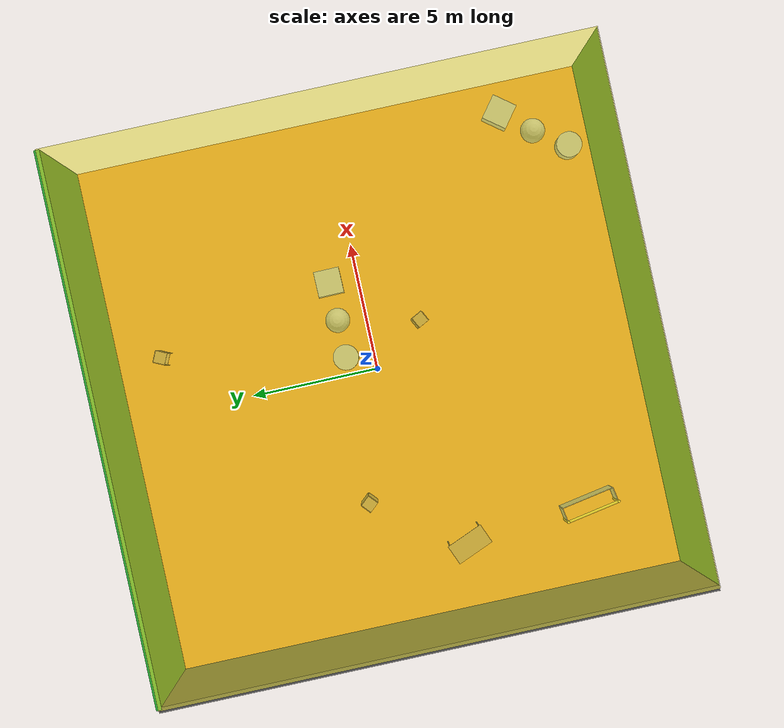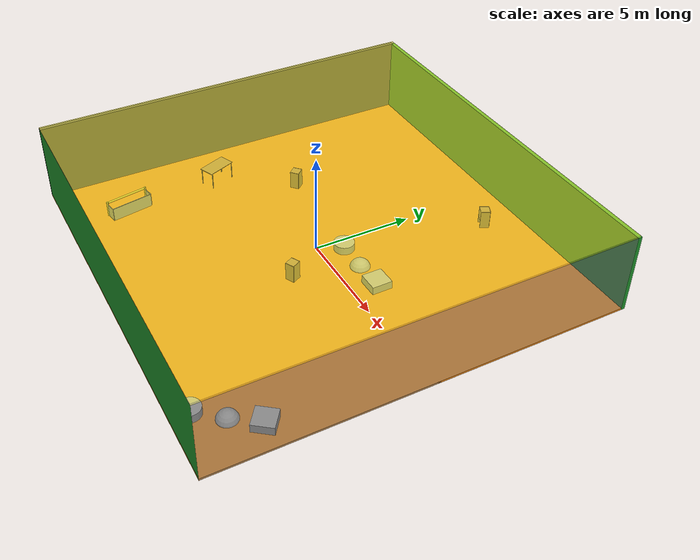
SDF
<sdf version="1.4">
 <world name="default">
  <physics type="ode">
   <max_step_size>0.001</max_step_size>
   <real_time_factor>1</real_time_factor>
   <real_time_update_rate>1000</real_time_update_rate>
   <gravity>0 0 -9.8</gravity>
  </physics>
  <scene><ambient>0.4 0.4 0.4 1</ambient><background>0.7 0.7 0.7 1</background><shadows>1</shadows></scene>
  <model name="Surrounding">
   <static>1</static>
   <link name="Ceiling">
    <collision name="Ceiling_Collision"><geometry><box><size>20 20 0.1</size></box></geometry></collision>
    <visual name="Ceiling_Visual">
     <geometry><box><size>20 20 0.1</size></box></geometry>
     <material>
      <script>
       <uri>file://media/materials/scripts/gazebo.material</uri>
       <name>Gazebo/YellowTransparent</name>
      </script>
     </material>
    </visual>
    <pose>0 0 4.05 0 0 0</pose>
   </link>
   <link name="Wall_South">
    <collision name="Wall_South_Collision">
     <geometry><box><size>20 0 4</size></box></geometry>
     <pose>0 0 2 0 -0 0</pose>
    </collision>
    <visual name="Wall_South_Visual">
     <pose>0 0 2 0 -0 0</pose>
     <geometry><box><size>20 0 4</size></box></geometry>
     <material>
      <script><uri>file://media/materials/scripts/gazebo.material</uri><name>Gazebo/Green</name></script>
     </material>
    </visual>
    <velocity_decay><linear>0</linear><angular>0</angular></velocity_decay>
    <pose>0 -10 0 0 -0 0</pose>
   </link>
   <link name="Wall_East">
    <collision name="Wall_21_Collision">
     <geometry><box><size>20 0 4</size></box></geometry>
     <pose>0 0 2 0 -0 0</pose>
    </collision>
    <visual name="Wall_21_Visual">
     <pose>0 0 2 0 -0 0</pose>
     <geometry><box><size>20 0 4</size></box></geometry>
     <material>
      <script><uri>file://media/materials/scripts/gazebo.material</uri><name>Gazebo/GreyTransparent</name></script>
     </material>
    </visual>
    <velocity_decay><linear>0</linear><angular>0</angular></velocity_decay>
    <pose>10 0 0 0 -0 1.5708</pose>
   </link>
   <link name="Wall_North">
    <collision name="Wall_22_Collision">
     <geometry><box><size>20 0.2 4</size></box></geometry>
     <pose>0 0 2 0 -0 0</pose>
    </collision>
    <visual name="Wall_22_Visual">
     <pose>0 0 2 0 -0 0</pose>
     <geometry><box><size>20 0.2 4</size></box></geometry>
     <material>
      <script><uri>file://media/materials/scripts/gazebo.material</uri><name>Gazebo/Green</name></script>
     </material>
    </visual>
    <velocity_decay><linear>0</linear><angular>0</angular></velocity_decay>
    <pose>0 10 0 0 -0 0</pose>
   </link>
   <link name="Wall_West">
    <collision name="Wall_23_Collision">
     <geometry><box><size>20 0.2 4</size></box></geometry>
     <pose>0 0 2 0 -0 0</pose>
    </collision>
    <visual name="Wall_23_Visual">
     <pose>0 0 2 0 -0 0</pose>
     <geometry><box><size>20 0.2 4</size></box></geometry>
     <material>
      <script><uri>file://media/materials/scripts/gazebo.material</uri><name>Gazebo/DarkGrey</name></script>
     </material>
    </visual>
    <velocity_decay><linear>0</linear><angular>0</angular></velocity_decay>
    <pose>-10 0 0 0 0 -1.5708</pose>
   </link>
   <link name="Ground_link">
    <collision name="collision">
     <pose>0 0 .05 0 -0 0</pose>
     <geometry><box><size>20 20 0.1</size></box></geometry>
    </collision>
    <visual name="visual">
     <pose>0 0 .05 0 -0 0</pose>
     <geometry><box><size>20 20 0.1</size></box></geometry>
     <material>
      <script><uri>file://media/materials/scripts/gazebo.material</uri><name>Gazebo/Orange</name></script>
     </material>
    </visual>
   </link>
   <static>1</static>
  </model>
  <spherical_coordinates>
   <surface_model>EARTH_WGS84</surface_model>
   <latitude_deg>0</latitude_deg>
   <longitude_deg>0</longitude_deg>
   <elevation>0</elevation>
   <heading_deg>0</heading_deg>
  </spherical_coordinates>
  <light name="lightball_0" type="diffuse">
   <diffuse>0.8 0.8 0.8 1</diffuse>
   <specular>0.2 0.2 0.2 1</specular>
   <attenuation>
    <range>100</range>
    <constant>0.7</constant>
    <linear>0.01</linear>
    <quadratic>0.001</quadratic>
   </attenuation>
   <direction>-0.5 0.1 -0.9</direction>
   <pose>0.581956496173 -2.23839556836 3.88896729991 0 0 0</pose>
  </light>
  <light name="lightball_1" type="diffuse">
   <diffuse>0.8 0.8 0.8 1</diffuse>
   <specular>0.2 0.2 0.2 1</specular>
   <attenuation>
    <range>100</range>
    <constant>0.7</constant>
    <linear>0.01</linear>
    <quadratic>0.001</quadratic>
   </attenuation>
   <direction>-0.5 0.1 -0.9</direction>
   <pose>-0.335610011856 0.978523423402 1.79492364933 0 0 0</pose>
  </light>
  <light name="lightball_2" type="diffuse">
   <diffuse>0.8 0.8 0.8 1</diffuse>
   <specular>0.2 0.2 0.2 1</specular>
   <attenuation>
    <range>100</range>
    <constant>0.7</constant>
    <linear>0.01</linear>
    <quadratic>0.001</quadratic>
   </attenuation>
   <direction>-0.5 0.1 -0.9</direction>
   <pose>-4.73023381431 -0.265298571836 2.10818871609 0 0 0</pose>
  </light>
  <light name="lightball_3" type="diffuse">
   <diffuse>0.8 0.8 0.8 1</diffuse>
   <specular>0.2 0.2 0.2 1</specular>
   <attenuation>
    <range>100</range>
    <constant>0.7</constant>
    <linear>0.01</linear>
    <quadratic>0.001</quadratic>
   </attenuation>
   <direction>-0.5 0.1 -0.9</direction>
   <pose>-6.16560673554 7.71519740702 2.36711833824 0 0 0</pose>
  </light>
  <light name="lightball_4" type="diffuse">
   <diffuse>0.8 0.8 0.8 1</diffuse>
   <specular>0.2 0.2 0.2 1</specular>
   <attenuation>
    <range>100</range>
    <constant>0.7</constant>
    <linear>0.01</linear>
    <quadratic>0.001</quadratic>
   </attenuation>
   <direction>-0.5 0.1 -0.9</direction>
   <pose>8.75621775084 -1.0832422037 3.32104413887 0 0 0</pose>
  </light>
  <light name="lightball_5" type="diffuse">
   <diffuse>0.8 0.8 0.8 1</diffuse>
   <specular>0.2 0.2 0.2 1</specular>
   <attenuation>
    <range>100</range>
    <constant>0.7</constant>
    <linear>0.01</linear>
    <quadratic>0.001</quadratic>
   </attenuation>
   <direction>-0.5 0.1 -0.9</direction>
   <pose>5.70908609716 1.13522134155 3.35493624873 0 0 0</pose>
  </light>
  <light name="lightball_6" type="diffuse">
   <diffuse>0.8 0.8 0.8 1</diffuse>
   <specular>0.2 0.2 0.2 1</specular>
   <attenuation>
    <range>100</range>
    <constant>0.7</constant>
    <linear>0.01</linear>
    <quadratic>0.001</quadratic>
   </attenuation>
   <direction>-0.5 0.1 -0.9</direction>
   <pose>5.88814946359 -5.9815858006 2.3613427627 0 0 0</pose>
  </light>
  <light name="lightball_7" type="diffuse">
   <diffuse>0.8 0.8 0.8 1</diffuse>
   <specular>0.2 0.2 0.2 1</specular>
   <attenuation>
    <range>100</range>
    <constant>0.7</constant>
    <linear>0.01</linear>
    <quadratic>0.001</quadratic>
   </attenuation>
   <direction>-0.5 0.1 -0.9</direction>
   <pose>8.50146397007 -5.62186066085 1.44933219191 0 0 0</pose>
  </light>
  <light name="lightball_8" type="diffuse">
   <diffuse>0.8 0.8 0.8 1</diffuse>
   <specular>0.2 0.2 0.2 1</specular>
   <attenuation>
    <range>100</range>
    <constant>0.7</constant>
    <linear>0.01</linear>
    <quadratic>0.001</quadratic>
   </attenuation>
   <direction>-0.5 0.1 -0.9</direction>
   <pose>4.13227634091 -5.32839638188 2.27357304068 0 0 0</pose>
  </light>
  <light name="lightball_9" type="diffuse">
   <diffuse>0.8 0.8 0.8 1</diffuse>
   <specular>0.2 0.2 0.2 1</specular>
   <attenuation>
    <range>100</range>
    <constant>0.7</constant>
    <linear>0.01</linear>
    <quadratic>0.001</quadratic>
   </attenuation>
   <direction>-0.5 0.1 -0.9</direction>
   <pose>0.636486983136 -7.71889224792 1.23850399635 0 0 0</pose>
  </light>
  <light name="lightball_10" type="diffuse">
   <diffuse>0.8 0.8 0.8 1</diffuse>
   <specular>0.2 0.2 0.2 1</specular>
   <attenuation>
    <range>100</range>
    <constant>0.7</constant>
    <linear>0.01</linear>
    <quadratic>0.001</quadratic>
   </attenuation>
   <direction>-0.5 0.1 -0.9</direction>
   <pose>-7.31545991612 5.61389092082 0.530854413661 0 0 0</pose>
  </light>
  <light name="lightball_11" type="diffuse">
   <diffuse>0.8 0.8 0.8 1</diffuse>
   <specular>0.2 0.2 0.2 1</specular>
   <attenuation>
    <range>100</range>
    <constant>0.7</constant>
    <linear>0.01</linear>
    <quadratic>0.001</quadratic>
   </attenuation>
   <direction>-0.5 0.1 -0.9</direction>
   <pose>7.91035358883 -4.63148369485 2.07838759984 0 0 0</pose>
  </light>
  <include>
   <uri>model://robocup_3Dsim_goal</uri>
   <pose>-7.13649198643 -6.93356909124 0 0 0 0.179407825129</pose>
  </include>
  <include><uri>model://table</uri><pose>-7.31090636789 -2.01313117442 0 0 0 1.96171234901</pose></include>
  <include><uri>model://cabinet</uri><pose>-4.98781295247 1.40978224965 0 0 0 0.726225843236</pose></include>
  <include><uri>model://cabinet</uri><pose>1.50740213306 -1.99315850069 0 0 0 0.471895177329</pose></include>
  <include>
   <uri>model://textured_shapes</uri>
   <pose>2.20879258147 1.13021308805 0 0 0 1.5823347966</pose>
  </include>
  <include><uri>model://cabinet</uri><pose>2.21144707612 8.04564163115 0 0 0 1.12826438513</pose></include>
  <include>
   <uri>model://textured_shapes</uri>
   <pose>7.85065272238 -7.94500536848 0 0 0 2.49008688437</pose>
  </include>
 </world>
</sdf>

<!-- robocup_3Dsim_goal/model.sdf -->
<sdf version="1.5">
  <model name="robocup_3d_goal">
    <static>true</static>
    <link name="left_post">
      <pose>0 1.05 0.45 0 0 0</pose>
      <collision name="collision">
        <geometry>
          <cylinder>
            <radius>0.05</radius>
            <length>0.9</length>
          </cylinder>
        </geometry>
      </collision>
      <visual name="visual">
        <geometry>
          <cylinder>
            <radius>0.05</radius>
            <length>0.9</length>
          </cylinder>
        </geometry>
        <material>
          <script>
            <uri>file://media/materials/scripts/gazebo.material</uri>
            <name>Gazebo/ZincYellow</name>
          </script>
        </material>
      </visual>
    </link>
    <link name="left_support_horiz_lower">
      <pose>0.30 1.05 0.01 0 0 0</pose>
      <collision name="collision">
        <geometry>
          <box>
            <size>0.50 0.02 0.02</size>
          </box>
        </geometry>
      </collision>
      <visual name="visual">
        <geometry>
          <box>
            <size>0.50 0.02 0.02</size>
          </box>
        </geometry>
        <material>
          <script>
            <uri>file://media/materials/scripts/gazebo.material</uri>
            <name>Gazebo/White</name>
          </script>
        </material>
      </visual>
    </link>
    <link name="left_support_horiz_upper">
      <pose>0.30 1.05 0.79 0 0 0</pose>
      <collision name="collision">
        <geometry>
          <box>
            <size>0.50 0.02 0.02</size>
          </box>
        </geometry>
      </collision>
      <visual name="visual">
        <geometry>
          <box>
            <size>0.50 0.02 0.02</size>
          </box>
        </geometry>
        <material>
          <script>
            <uri>file://media/materials/scripts/gazebo.material</uri>
            <name>Gazebo/White</name>
          </script>
        </material>
      </visual>
    </link>
    <link name="left_support_vertical">
      <pose>0.56 1.05 0.4 0 1.5708 0</pose>
      <collision name="collision">
        <geometry>
          <box>
            <size>0.80 0.02 0.02</size>
          </box>
        </geometry>
      </collision>
      <visual name="visual">
        <geometry>
          <box>
            <size>0.80 0.02 0.02</size>
          </box>
        </geometry>
        <material>
          <script>
            <uri>file://media/materials/scripts/gazebo.material</uri>
            <name>Gazebo/White</name>
          </script>
        </material>
      </visual>
    </link>
    <link name="right_support_horiz_lower">
      <pose>0.30 -1.05 0.01 0 0 0</pose>
      <collision name="collision">
        <geometry>
          <box>
            <size>0.50 0.02 0.02</size>
          </box>
        </geometry>
      </collision>
      <visual name="visual">
        <geometry>
          <box>
            <size>0.50 0.02 0.02</size>
          </box>
        </geometry>
        <material>
          <script>
            <uri>file://media/materials/scripts/gazebo.material</uri>
            <name>Gazebo/White</name>
          </script>
        </material>
      </visual>
    </link>
    <link name="right_support_horiz_upper">
      <pose>0.30 -1.05 0.79 0 0 0</pose>
      <collision name="collision">
        <geometry>
          <box>
            <size>0.50 0.02 0.02</size>
          </box>
        </geometry>
      </collision>
      <visual name="visual">
        <geometry>
          <box>
            <size>0.50 0.02 0.02</size>
          </box>
        </geometry>
        <material>
          <script>
            <uri>file://media/materials/scripts/gazebo.material</uri>
            <name>Gazebo/White</name>
          </script>
        </material>
      </visual>
    </link>
    <link name="right_support_vertical">
      <pose>0.56 -1.05 0.4 0 1.5708 0</pose>
      <collision name="collision">
        <geometry>
          <box>
            <size>0.80 0.02 0.02</size>
          </box>
        </geometry>
      </collision>
      <visual name="visual">
        <geometry>
          <box>
            <size>0.80 0.02 0.02</size>
          </box>
        </geometry>
        <material>
          <script>
            <uri>file://media/materials/scripts/gazebo.material</uri>
            <name>Gazebo/White</name>
          </script>
        </material>
      </visual>
    </link>
    <link name="center_support_horiz_lower">
      <pose>0.56 0 0.01 0 1.5708 0</pose>
      <collision name="collision">
        <geometry>
          <box>
            <size>0.02 2.08 0.02</size>
          </box>
        </geometry>
      </collision>
      <visual name="visual">
        <geometry>
          <box>
            <size>0.02 2.08 0.02</size>
          </box>
        </geometry>
        <material>
          <script>
            <uri>file://media/materials/scripts/gazebo.material</uri>
            <name>Gazebo/White</name>
          </script>
        </material>
      </visual>
    </link>
    <link name="center_support_horiz_upper">
      <pose>0.56 0 0.79 0 1.5708 0</pose>
      <collision name="collision">
        <geometry>
          <box>
            <size>0.02 2.08 0.02</size>
          </box>
        </geometry>
      </collision>
      <visual name="visual">
        <geometry>
          <box>
            <size>0.02 2.08 0.02</size>
          </box>
        </geometry>
        <material>
          <script>
            <uri>file://media/materials/scripts/gazebo.material</uri>
            <name>Gazebo/White</name>
          </script>
        </material>
      </visual>
    </link>
    <link name="right_post">
      <pose>0 -1.05 0.45 0 0 0</pose>
      <collision name="collision">
        <geometry>
          <cylinder>
            <radius>0.05</radius>
            <length>0.9</length>
          </cylinder>
        </geometry>
      </collision>
      <visual name="visual">
        <geometry>
          <cylinder>
            <radius>0.05</radius>
            <length>0.9</length>
          </cylinder>
        </geometry>
        <material>
          <script>
            <uri>file://media/materials/scripts/gazebo.material</uri>
            <name>Gazebo/ZincYellow</name>
          </script>
        </material>
      </visual>
    </link>
    <link name="crossbar">
      <pose>0 0 0.85 1.57 1.57 0</pose>
      <collision name="collision">
        <geometry>
          <cylinder>
            <radius>0.05</radius>
            <length>2.0</length>
          </cylinder>
        </geometry>
      </collision>
      <visual name="visual">
        <geometry>
          <cylinder>
            <radius>0.05</radius>
            <length>2.0</length>
          </cylinder>
        </geometry>
        <material>
          <script>
            <uri>file://media/materials/scripts/gazebo.material</uri>
            <name>Gazebo/ZincYellow</name>
          </script>
        </material>
      </visual>
    </link>
    <link name="center_net">
      <pose>0.56 0 0.40 0 0 0</pose>
      <collision name="collision">
        <geometry>
          <box>
            <size>0.01 2.1 0.80</size>
          </box>
        </geometry>
      </collision>
      <visual name="visual">
        <geometry>
          <box>
            <size>0.01 2.1 0.80</size>
          </box>
        </geometry>
        <material>
          <script>
            <uri>model://../model_source/models/robocup09_spl_field/materials/scripts/</uri>
            <uri>model://../model_source/models/robocup09_spl_field/materials/textures/</uri>
            <name>RoboCup/Net</name>
          </script>
        </material>
      </visual>
    </link>
    <link name="left_net">
      <pose>0.30 1.05 0.40 0 0 0</pose>
      <collision name="collision">
        <geometry>
          <box>
            <size>0.50 0.01 0.76</size>
          </box>
        </geometry>
      </collision>
      <visual name="visual">
        <geometry>
          <box>
            <size>0.50 0.01 0.76</size>
          </box>
        </geometry>
        <material>
          <script>
            <uri>model://../model_source/models/robocup09_spl_field/materials/scripts/</uri>
            <uri>model://../model_source/models/robocup09_spl_field/materials/textures/</uri>
            <name>RoboCup/Net</name>
          </script>
        </material>
      </visual>
    </link>
    <link name="right_net">
      <pose>0.30 -1.05 0.40 0 0 0</pose>
      <collision name="collision">
        <geometry>
          <box>
            <size>0.50 0.01 0.76</size>
          </box>
        </geometry>
      </collision>
      <visual name="visual">
        <geometry>
          <box>
            <size>0.50 0.01 0.76</size>
          </box>
        </geometry>
        <material>
          <script>
            <uri>model://../model_source/models/robocup09_spl_field/materials/scripts/</uri>
            <uri>model://../model_source/models/robocup09_spl_field/materials/textures/</uri>
            <name>RoboCup/Net</name>
          </script>
        </material>
      </visual>
    </link>
  </model>
</sdf>

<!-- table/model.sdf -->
<sdf version="1.5">
  <model name="table">
    <static>true</static>
    <link name="link">
      <collision name="surface">
        <pose>0 0 1.0 0 0 0</pose>
        <geometry>
          <box>
            <size>1.5 0.8 0.03</size>
          </box>
        </geometry>
        <surface>
          <friction>
            <ode>
              <mu>0.6</mu>
              <mu2>0.6</mu2>
            </ode>
          </friction>
        </surface>
      </collision>
      <visual name="visual1">
        <pose>0 0 1.0 0 0 0</pose>
        <geometry>
          <box>
            <size>1.5 0.8 0.03</size>
          </box>
        </geometry>
        <material>
          <script>
            <uri>model://media/materials/scripts/gazebo.material</uri>
            <name>Gazebo/Wood</name>
          </script>
        </material>
      </visual>
      <collision name="front_left_leg">
        <pose>0.68 0.38 0.5 0 0 0</pose>
        <geometry>
          <cylinder>
            <radius>0.02</radius>
            <length>1.0</length>
          </cylinder>
        </geometry>
      </collision>
      <visual name="front_left_leg">
        <pose>0.68 0.38 0.5 0 0 0</pose>
        <geometry>
          <cylinder>
            <radius>0.02</radius>
            <length>1.0</length>
          </cylinder>
        </geometry>
        <material>
          <script>
            <uri>model://media/materials/scripts/gazebo.material</uri>
            <name>Gazebo/Grey</name>
          </script>
        </material>
      </visual>
      <collision name="front_right_leg">
        <pose>0.68 -0.38 0.5 0 0 0</pose>
        <geometry>
          <cylinder>
            <radius>0.02</radius>
            <length>1.0</length>
          </cylinder>
        </geometry>
      </collision>
      <visual name="front_right_leg">
        <pose>0.68 -0.38 0.5 0 0 0</pose>
        <geometry>
          <cylinder>
            <radius>0.02</radius>
            <length>1.0</length>
          </cylinder>
        </geometry>
        <material>
          <script>
            <uri>model://media/materials/scripts/gazebo.material</uri>
            <name>Gazebo/Grey</name>
          </script>
        </material>
      </visual>
      <collision name="back_right_leg">
        <pose>-0.68 -0.38 0.5 0 0 0</pose>
        <geometry>
          <cylinder>
            <radius>0.02</radius>
            <length>1.0</length>
          </cylinder>
        </geometry>
      </collision>
      <visual name="back_right_leg">
        <pose>-0.68 -0.38 0.5 0 0 0</pose>
        <geometry>
          <cylinder>
            <radius>0.02</radius>
            <length>1.0</length>
          </cylinder>
        </geometry>
        <material>
          <script>
            <uri>model://media/materials/scripts/gazebo.material</uri>
            <name>Gazebo/Grey</name>
          </script>
        </material>
      </visual>
      <collision name="back_left_leg">
        <pose>-0.68 0.38 0.5 0 0 0</pose>
        <geometry>
          <cylinder>
            <radius>0.02</radius>
            <length>1.0</length>
          </cylinder>
        </geometry>
      </collision>
      <visual name="back_left_leg">
        <pose>-0.68 0.38 0.5 0 0 0</pose>
        <geometry>
          <cylinder>
            <radius>0.02</radius>
            <length>1.0</length>
          </cylinder>
        </geometry>
        <material>
          <script>
            <uri>model://media/materials/scripts/gazebo.material</uri>
            <name>Gazebo/Grey</name>
          </script>
        </material>
      </visual>
    </link>
  </model>
</sdf>

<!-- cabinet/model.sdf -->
<sdf version="1.5">
  <model name="cabinet">
    <static>true</static>
    <link name="cabinet_bottom_plate">
      <inertial>
        <pose>0 0 -1 0 0 0</pose>
        <inertia>
          <ixx>2.050000</ixx>
          <ixy>0</ixy>
          <ixz>0</ixz>
          <iyy>2.050000</iyy>
          <iyz>0</iyz>
          <izz>2.050000</izz>
        </inertia>
        <mass>25.000000</mass>
      </inertial>
      <collision name="cabinet_bottom_plate_geom">
        <pose>0 0 0.010000 0 0 0</pose>
        <geometry>
          <box>
            <size>0.450000 0.450000 0.020000</size>
          </box>
        </geometry>
      </collision>
      <visual name="cabinet_bottom_plate_geom_visual">
        <pose>0 0 0.010000 0 0 0</pose>
        <geometry>
          <box>
            <size>0.450000 0.450000 0.020000</size>
          </box>
        </geometry>
        <material>
          <script>
            <uri>model://media/materials/scripts/gazebo.material</uri>
            <name>Gazebo/Wood</name>
          </script>
        </material>
      </visual>
      <collision name="cabinet_bottom_plate_geom_cabinet_back_plate">
        <pose>0.235000 0 0.510000 0 0 0</pose>
        <geometry>
          <box>
            <size>0.020000 0.450000 1.020000</size>
          </box>
        </geometry>
      </collision>
      <visual name="cabinet_bottom_plate_geom_cabinet_back_plate_visual">
        <pose>0.235000 0 0.510000 0 0 0</pose>
        <geometry>
          <box>
            <size>0.020000 0.450000 1.020000</size>
          </box>
        </geometry>
        <material>
          <script>
            <uri>model://media/materials/scripts/gazebo.material</uri>
            <name>Gazebo/Wood</name>
          </script>
        </material>
      </visual>
      <collision name="cabinet_bottom_plate_geom_cabinet_left_plate">
        <pose>0 0.235000 0.510000 0 0 0</pose>
        <geometry>
          <box>
            <size>0.450000 0.020000 1.020000</size>
          </box>
        </geometry>
      </collision>
      <visual name="cabinet_bottom_plate_geom_cabinet_left_plate_visual">
        <pose>0 0.235000 0.510000 0 0 0</pose>
        <geometry>
          <box>
            <size>0.450000 0.020000 1.020000</size>
          </box>
        </geometry>
        <material>
          <script>
            <uri>model://media/materials/scripts/gazebo.material</uri>
            <name>Gazebo/Wood</name>
          </script>
        </material>
      </visual>
      <collision name="cabinet_bottom_plate_geom_cabinet_middle_plate">
        <pose>0 0 0.510000 0 0 0</pose>
        <geometry>
          <box>
            <size>0.450000 0.450000 0.020000</size>
          </box>
        </geometry>
      </collision>
      <visual name="cabinet_bottom_plate_geom_cabinet_middle_plate_visual">
        <pose>0 0 0.510000 0 0 0</pose>
        <geometry>
          <box>
            <size>0.450000 0.450000 0.020000</size>
          </box>
        </geometry>
        <material>
          <script>
            <uri>model://media/materials/scripts/gazebo.material</uri>
            <name>Gazebo/Wood</name>
          </script>
        </material>
      </visual>
      <collision name="cabinet_bottom_plate_geom_cabinet_right_plate">
        <pose>0 -0.235000 0.510000 0 0 0</pose>
        <geometry>
          <box>
            <size>0.450000 0.020000 1.020000</size>
          </box>
        </geometry>
      </collision>
      <visual name="cabinet_bottom_plate_geom_cabinet_right_plate_visual">
        <pose>0 -0.235000 0.510000 0 0 0</pose>
        <geometry>
          <box>
            <size>0.450000 0.020000 1.020000</size>
          </box>
        </geometry>
        <material>
          <script>
            <uri>model://media/materials/scripts/gazebo.material</uri>
            <name>Gazebo/Wood</name>
          </script>
        </material>
      </visual>
      <collision name="cabinet_bottom_plate_geom_cabinet_top_plate">
        <pose>0 0 1.010000 0 0 0</pose>
        <geometry>
          <box>
            <size>0.450000 0.450000 0.020000</size>
          </box>
        </geometry>
      </collision>
      <visual name="cabinet_bottom_plate_geom_cabinet_top_plate_visual">
        <pose>0 0 1.010000 0 0 0</pose>
        <geometry>
          <box>
            <size>0.450000 0.450000 0.020000</size>
          </box>
        </geometry>
        <material>
          <script>
            <uri>model://media/materials/scripts/gazebo.material</uri>
            <name>Gazebo/Wood</name>
          </script>
        </material>
      </visual>
    </link>
  </model>
</sdf>

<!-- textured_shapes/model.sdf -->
<sdf version="1.6">
  <model name="textured_shapes">
    <pose>0 0 0.5 0 0 0</pose>
    <link name="box">
      <pose>0 -1.5 0 0 0 0</pose>
      <collision name="collision">
        <geometry>
          <box>
            <size>1 1 1</size>
          </box>
        </geometry>
      </collision>
      <visual name="visual">
        <geometry>
          <box>
            <size>1 1 1</size>
          </box>
        </geometry>
        <material>
          <script>
            <uri>model://../model_source/models/textured_shapes/materials/scripts</uri>
            <uri>model://../model_source/models/textured_shapes/materials/textures</uri>
            <name>TexturedShape/Squares</name>
          </script>
        </material>
      </visual>
    </link>
    <link name="sphere">
      <collision name="collision">
        <geometry>
          <sphere>
            <radius>0.5</radius>
          </sphere>
        </geometry>
      </collision>
      <visual name="visual">
        <geometry>
          <sphere>
            <radius>0.5</radius>
          </sphere>
        </geometry>
        <material>
          <script>
            <uri>model://../model_source/models/textured_shapes/materials/scripts</uri>
            <uri>model://../model_source/models/textured_shapes/materials/textures</uri>
            <name>TexturedShape/Squares</name>
          </script>
        </material>
      </visual>
    </link>
    <link name="cylinder">
      <pose>0 1.5 0 0 0 0</pose>
      <collision name="collision">
        <geometry>
          <cylinder>
            <radius>0.5</radius>
            <length>1</length>
          </cylinder>
        </geometry>
      </collision>
      <visual name="visual">
        <geometry>
          <cylinder>
            <radius>0.5</radius>
            <length>1</length>
          </cylinder>
        </geometry>
        <material>
          <script>
            <uri>model://../model_source/models/textured_shapes/materials/scripts</uri>
            <uri>model://../model_source/models/textured_shapes/materials/textures</uri>
            <name>TexturedShape/Squares</name>
          </script>
        </material>
      </visual>
    </link>
  </model>
</sdf>
